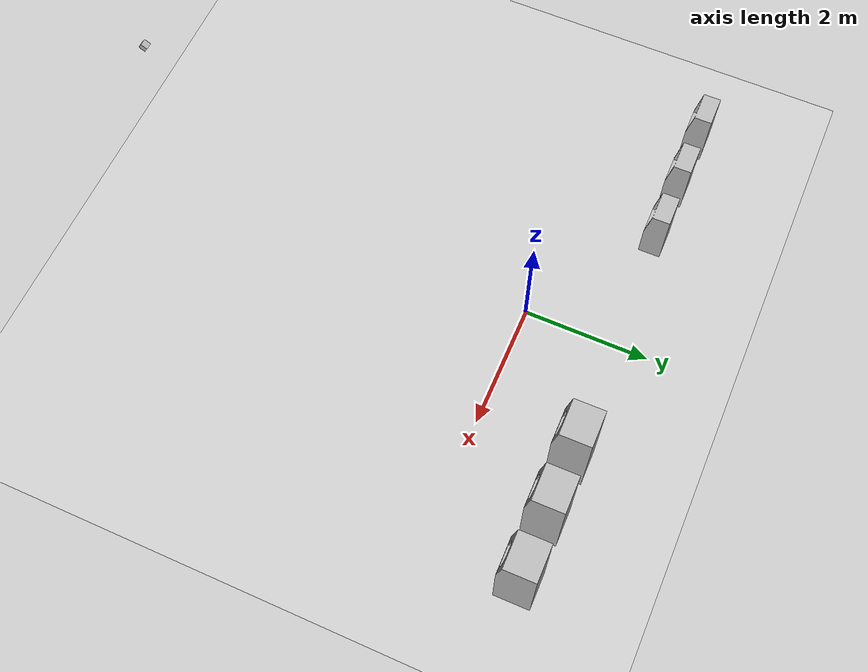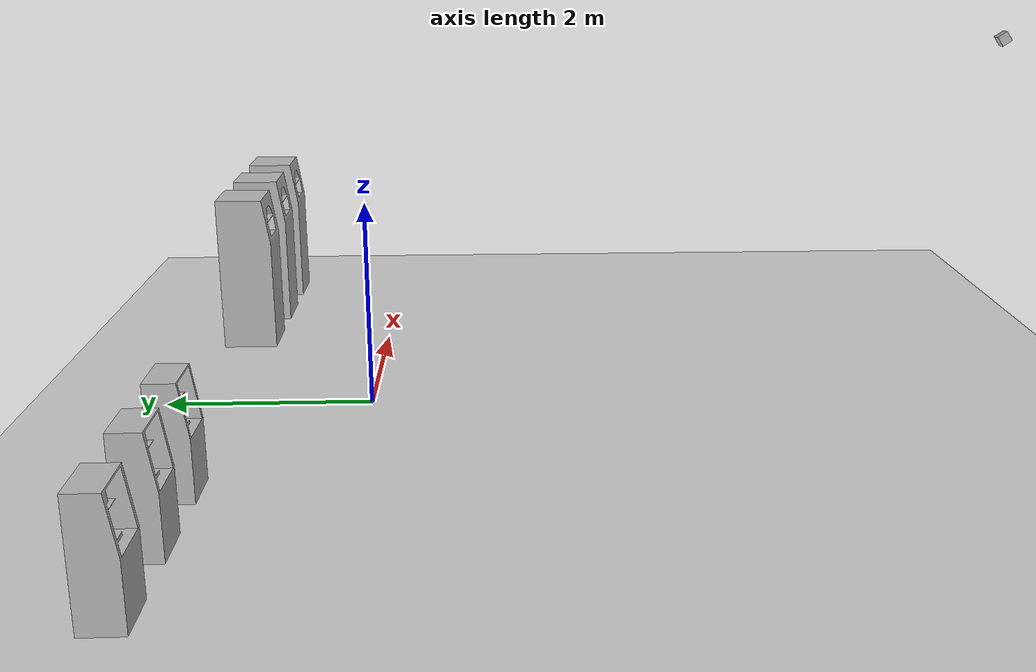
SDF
<sdf version="1.9">
 <world name="default">
  <plugin filename="gz-sim-sensors-system" name="gz::sim::systems::Sensors">
   <render_engine>ogre2</render_engine>
  </plugin>
  <scene><shadows>true</shadows><ambient>0.4 0.4 0.4 1</ambient><background>0.7 0.7 0.7 1</background></scene>
  <light name="sun" type="directional">
   <pose>0 0 10 0 0 0</pose>
   <diffuse>0.9 0.9 0.9 1</diffuse>
   <specular>0.3 0.3 0.3 1</specular>
   <direction>-0.5 0.1 -0.9</direction>
  </light>
  <model name="ground_plane">
   <static>true</static>
   <link name="link">
    <collision name="collision">
     <geometry><plane><normal>0 0 1</normal><size>100 100</size></plane></geometry>
    </collision>
    <visual name="visual">
     <geometry><plane><normal>0 0 1</normal><size>100 100</size></plane></geometry>
     <material>
      <ambient>0.8 0.8 0.8 1</ambient>
      <diffuse>0.8 0.8 0.8 1</diffuse>
      <specular>0.8 0.8 0.8 1</specular>
     </material>
    </visual>
   </link>
  </model>
  <include>
   <uri>Curing</uri>
   <name>curing_machine_1</name>
   <pose>2 1.5 0.6 0 0 -3.1331</pose>
   <plugin filename="gz-sim-label-system" name="gz::sim::systems::Label"><label>20</label></plugin>
  </include>
  <include>
   <uri>Curing</uri>
   <name>curing_machine_2</name>
   <pose>3 1.5 0.6 0 0 -3.1331</pose>
   <plugin filename="gz-sim-label-system" name="gz::sim::systems::Label"><label>20</label></plugin>
  </include>
  <include>
   <uri>Curing</uri>
   <name>curing_machine_3</name>
   <pose>4 1.5 0.6 0 0 -3.1331</pose>
   <plugin filename="gz-sim-label-system" name="gz::sim::systems::Label"><label>20</label></plugin>
  </include>
  <include>
   <uri>Printer</uri>
   <name>printer_1</name>
   <pose>-2 1.5 0.3 0 0 -3.1331</pose>
   <plugin filename="gz-sim-label-system" name="gz::sim::systems::Label"><label>30</label></plugin>
  </include>
  <include>
   <uri>Printer</uri>
   <name>printer_2</name>
   <pose>-3 1.5 0.3 0 0 -3.1331</pose>
   <plugin filename="gz-sim-label-system" name="gz::sim::systems::Label"><label>30</label></plugin>
  </include>
  <include>
   <uri>Printer</uri>
   <name>printer_3</name>
   <pose>-4 1.5 0.3 0 0 -3.1331</pose>
   <plugin filename="gz-sim-label-system" name="gz::sim::systems::Label"><label>30</label></plugin>
  </include>
  <model name="boundingbox_camera">
   <pose>0 -6 3.5 0 0.5999 1.5708</pose>
   <static>true</static>
   <link name="link">
    <pose>0.05 0.05 0.05 0 0 0</pose>
    <collision name="collision"><geometry><box><size>0.1 0.1 0.1</size></box></geometry></collision>
    <visual name="visual"><geometry><box><size>0.1 0.1 0.1</size></box></geometry></visual>
    <sensor name="visible_2d" type="boundingbox_camera">
     <camera>
      <box_type>visible_2d</box_type>
      <horizontal_fov>1.5</horizontal_fov>
      <image><width>800</width><height>600</height></image>
      <clip><near>0.1</near><far>30</far></clip>
      <save enabled="false"><path>bounding_box_visible_2d_data</path></save>
     </camera>
     <always_on>1</always_on>
     <update_rate>60</update_rate>
     <visualize>true</visualize>
     <topic>/bounding_box_camera/boxes</topic>
    </sensor>
    <sensor name="rgb_camera" type="camera">
     <always_on>true</always_on>
     <update_rate>10</update_rate>
     <camera>
      <horizontal_fov>1.5</horizontal_fov>
      <image><width>800</width><height>600</height><format>R8G8B8</format></image>
      <clip><near>0.1</near><far>30</far></clip>
     </camera>
     <topic>/camera/image</topic>
    </sensor>
    <sensor name="depth_camera" type="depth_camera">
     <always_on>true</always_on>
     <update_rate>10</update_rate>
     <camera>
      <horizontal_fov>1.5</horizontal_fov>
      <image><width>800</width><height>600</height><format>R_FLOAT32</format></image>
      <clip><near>0.1</near><far>30</far></clip>
     </camera>
     <topic>/depth_camera/image</topic>
    </sensor>
   </link>
  </model>
 </world>
</sdf>

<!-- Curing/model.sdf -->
<sdf version="1.9">
  <model name="remeshes_gazebo">
    <static>true</static>
    <link name="Curing_link">
      <pose>0.000000 0.000000 0.000000 0.000000 0.000000 0.000000</pose>
      <visual name="Curing_visual">
        <geometry>
          <mesh>
            <uri>meshes/Curing.obj</uri>
            <scale>0.001 0.001 0.001</scale>
          </mesh>
        </geometry>
      </visual>
      <collision name="Curing_collision">
        <geometry>
          <mesh>
            <uri>meshes/Curing_col.obj</uri>
            <scale>0.001 0.001 0.001</scale>
          </mesh>
        </geometry>
      </collision>
    </link>
  </model>
</sdf>

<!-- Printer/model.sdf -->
<sdf version="1.9">
  <model name="remeshes_gazebo">
    <static>true</static>
    <link name="Printer_link">
      <pose>0.000000 0.000000 0.000000 0.000000 0.000000 0.000000</pose>
      <visual name="Printer_visual">
        <geometry>
          <mesh>
            <uri>meshes/Printer.obj</uri>
            <scale>0.001 0.001 0.001</scale>
          </mesh>
        </geometry>
      </visual>
      <collision name="Printer_collision">
        <geometry>
          <mesh>
            <uri>meshes/Printer_col.obj</uri>
            <scale>0.001 0.001 0.001</scale>
          </mesh>
        </geometry>
      </collision>
    </link>
  </model>
</sdf>
